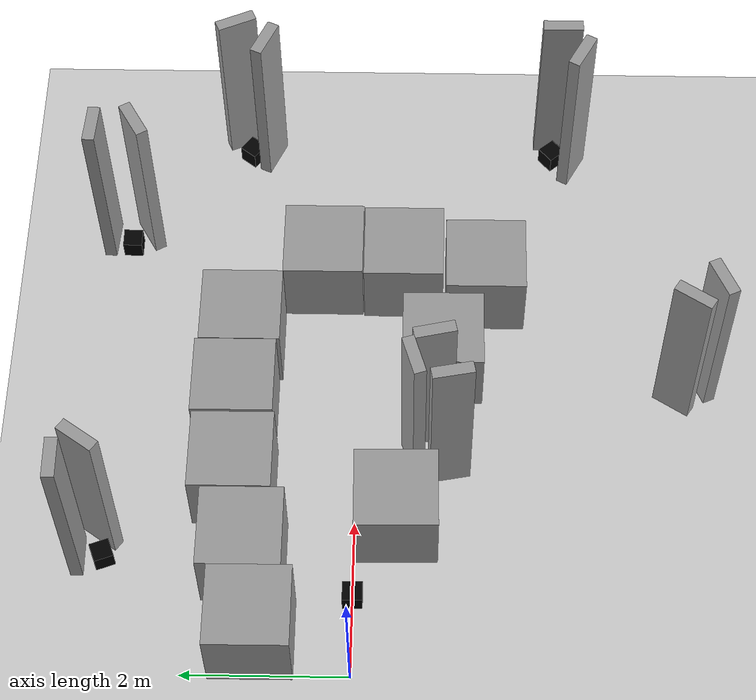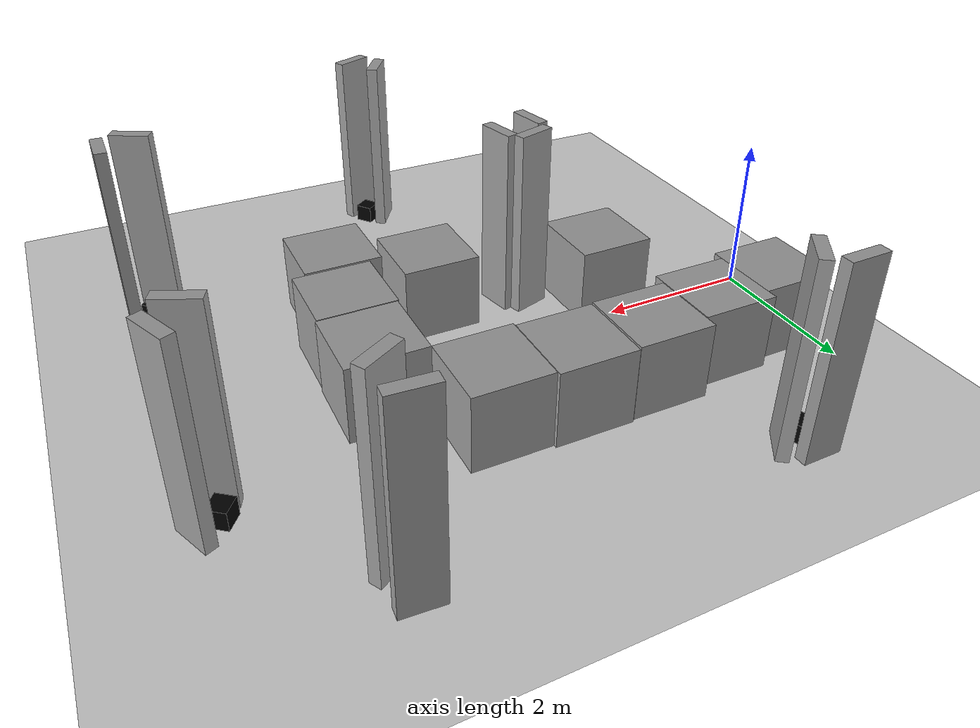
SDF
<sdf version="1.6">
 <world name="default">
  <light name="sun" type="directional">
   <pose>0 0 10 0 -0 0</pose>
   <diffuse>0.8 0.8 0.8 1</diffuse>
   <specular>0.2 0.2 0.2 1</specular>
   <attenuation>
    <range>1000</range>
    <constant>0.9</constant>
    <linear>0.01</linear>
    <quadratic>0.001</quadratic>
   </attenuation>
   <direction>-0.5 0.1 -0.9</direction>
  </light>
  <model name="ground_plane">
   <static>1</static>
   <link name="link">
    <collision name="collision">
     <geometry><plane><normal>0 0 1</normal><size>100 100</size></plane></geometry>
     <surface>
      <contact><collide_bitmask>65535</collide_bitmask></contact>
      <friction><ode><mu>100</mu><mu2>50</mu2></ode></friction>
     </surface>
    </collision>
    <visual name="visual">
     <cast_shadows>0</cast_shadows>
     <geometry><plane><normal>0 0 1</normal><size>100 100</size></plane></geometry>
     <material>
      <script><uri>file://media/materials/scripts/gazebo.material</uri><name>Gazebo/Grey</name></script>
     </material>
    </visual>
   </link>
  </model>
  <gravity>0 0 -9.8</gravity>
  <magnetic_field>6e-06 2.3e-05 -4.2e-05</magnetic_field>
  <atmosphere type="adiabatic"/>
  <physics name="default_physics" default="0" type="ode">
   <max_step_size>0.001</max_step_size>
   <real_time_factor>1</real_time_factor>
   <real_time_update_rate>1000</real_time_update_rate>
  </physics>
  <scene><ambient>0.4 0.4 0.4 1</ambient><background>0.7 0.7 0.7 1</background><shadows>1</shadows></scene>
  <audio><device>default</device></audio>
  <spherical_coordinates>
   <surface_model>EARTH_WGS84</surface_model>
   <latitude_deg>0</latitude_deg>
   <longitude_deg>0</longitude_deg>
   <elevation>0</elevation>
   <heading_deg>0</heading_deg>
  </spherical_coordinates>
  <model name="aruco_box_1">
   <link name="link_0">
    <inertial>
     <mass>1</mass>
     <inertia>
      <ixx>0.166667</ixx>
      <ixy>0</ixy>
      <ixz>0</ixz>
      <iyy>0.166667</iyy>
      <iyz>0</iyz>
      <izz>0.166667</izz>
     </inertia>
    </inertial>
    <visual name="visual">
     <geometry><box><size>0.24 0.24 0.24</size></box></geometry>
     <material>
      <lighting>1</lighting>
      <script>
       <uri>model://aruco_box_1/materials/scripts</uri>
       <uri>model://aruco_box_1/materials/textures</uri>
       <name>Aruco/Id1</name>
      </script>
      <shader type="vertex"><normal_map>__default__</normal_map></shader>
      <ambient>0 0 0 1</ambient>
      <diffuse>0 0 0 1</diffuse>
      <specular>0 0 0 0</specular>
      <emissive>1 1 1 1</emissive>
     </material>
    </visual>
    <collision name="collision">
     <geometry><box><size>0.24 0.24 0.24</size></box></geometry>
     <surface>
      <friction>
       <ode><mu>1</mu><mu2>1</mu2><fdir1>0 0 0</fdir1><slip1>0</slip1><slip2>0</slip2></ode>
       <torsional>
        <coefficient>1</coefficient>
        <patch_radius>0</patch_radius>
        <surface_radius>0</surface_radius>
        <use_patch_radius>1</use_patch_radius>
        <ode><slip>0</slip></ode>
       </torsional>
      </friction>
      <bounce><restitution_coefficient>0</restitution_coefficient><threshold>1e+06</threshold></bounce>
      <contact>
       <collide_without_contact>0</collide_without_contact>
       <collide_without_contact_bitmask>1</collide_without_contact_bitmask>
       <collide_bitmask>1</collide_bitmask>
       <ode>
        <soft_cfm>0</soft_cfm>
        <soft_erp>0.2</soft_erp>
        <kp>1e+13</kp>
        <kd>1</kd>
        <max_vel>0.01</max_vel>
        <min_depth>0</min_depth>
       </ode>
       <bullet>
        <split_impulse>1</split_impulse>
        <split_impulse_penetration_threshold>-0.01</split_impulse_penetration_threshold>
        <soft_cfm>0</soft_cfm>
        <soft_erp>0.2</soft_erp>
        <kp>1e+13</kp>
        <kd>1</kd>
       </bullet>
      </contact>
     </surface>
    </collision>
   </link>
   <static>0</static>
   <pose>1.48724 3.00832 0.12 0 0 -1.20521</pose>
  </model>
  <model name="aruco_box_2">
   <link name="link_0">
    <inertial>
     <mass>1</mass>
     <inertia>
      <ixx>0.166667</ixx>
      <ixy>0</ixy>
      <ixz>0</ixz>
      <iyy>0.166667</iyy>
      <iyz>0</iyz>
      <izz>0.166667</izz>
     </inertia>
    </inertial>
    <visual name="visual">
     <geometry><box><size>0.24 0.24 0.24</size></box></geometry>
     <material>
      <lighting>1</lighting>
      <script>
       <uri>model://aruco_box_2/materials/scripts</uri>
       <uri>model://aruco_box_2/materials/textures</uri>
       <name>Aruco/Id2</name>
      </script>
      <shader type="vertex"><normal_map>__default__</normal_map></shader>
      <ambient>0 0 0 1</ambient>
      <diffuse>0 0 0 1</diffuse>
      <specular>0 0 0 0</specular>
      <emissive>1 1 1 1</emissive>
     </material>
    </visual>
    <collision name="collision">
     <geometry><box><size>0.24 0.24 0.24</size></box></geometry>
     <surface>
      <friction>
       <ode><mu>1</mu><mu2>1</mu2><fdir1>0 0 0</fdir1><slip1>0</slip1><slip2>0</slip2></ode>
       <torsional>
        <coefficient>1</coefficient>
        <patch_radius>0</patch_radius>
        <surface_radius>0</surface_radius>
        <use_patch_radius>1</use_patch_radius>
        <ode><slip>0</slip></ode>
       </torsional>
      </friction>
      <bounce><restitution_coefficient>0</restitution_coefficient><threshold>1e+06</threshold></bounce>
      <contact>
       <collide_without_contact>0</collide_without_contact>
       <collide_without_contact_bitmask>1</collide_without_contact_bitmask>
       <collide_bitmask>1</collide_bitmask>
       <ode>
        <soft_cfm>0</soft_cfm>
        <soft_erp>0.2</soft_erp>
        <kp>1e+13</kp>
        <kd>1</kd>
        <max_vel>0.01</max_vel>
        <min_depth>0</min_depth>
       </ode>
       <bullet>
        <split_impulse>1</split_impulse>
        <split_impulse_penetration_threshold>-0.01</split_impulse_penetration_threshold>
        <soft_cfm>0</soft_cfm>
        <soft_erp>0.2</soft_erp>
        <kp>1e+13</kp>
        <kd>1</kd>
       </bullet>
      </contact>
     </surface>
    </collision>
   </link>
   <static>0</static>
   <pose>6 3 0.12 0 -0 0</pose>
  </model>
  <model name="aruco_box_3">
   <link name="link_0">
    <inertial>
     <mass>1</mass>
     <inertia>
      <ixx>0.166667</ixx>
      <ixy>0</ixy>
      <ixz>0</ixz>
      <iyy>0.166667</iyy>
      <iyz>0</iyz>
      <izz>0.166667</izz>
     </inertia>
    </inertial>
    <visual name="visual">
     <geometry><box><size>0.24 0.24 0.24</size></box></geometry>
     <material>
      <lighting>1</lighting>
      <script>
       <uri>model://aruco_box_3/materials/scripts</uri>
       <uri>model://aruco_box_3/materials/textures</uri>
       <name>Aruco/Id3</name>
      </script>
      <shader type="vertex"><normal_map>__default__</normal_map></shader>
      <ambient>0 0 0 1</ambient>
      <diffuse>0 0 0 1</diffuse>
      <specular>0 0 0 0</specular>
      <emissive>1 1 1 1</emissive>
     </material>
    </visual>
    <collision name="collision">
     <geometry><box><size>0.24 0.24 0.24</size></box></geometry>
     <surface>
      <friction>
       <ode><mu>1</mu><mu2>1</mu2><fdir1>0 0 0</fdir1><slip1>0</slip1><slip2>0</slip2></ode>
       <torsional>
        <coefficient>1</coefficient>
        <patch_radius>0</patch_radius>
        <surface_radius>0</surface_radius>
        <use_patch_radius>1</use_patch_radius>
        <ode><slip>0</slip></ode>
       </torsional>
      </friction>
      <bounce><restitution_coefficient>0</restitution_coefficient><threshold>1e+06</threshold></bounce>
      <contact>
       <collide_without_contact>0</collide_without_contact>
       <collide_without_contact_bitmask>1</collide_without_contact_bitmask>
       <collide_bitmask>1</collide_bitmask>
       <ode>
        <soft_cfm>0</soft_cfm>
        <soft_erp>0.2</soft_erp>
        <kp>1e+13</kp>
        <kd>1</kd>
        <max_vel>0.01</max_vel>
        <min_depth>0</min_depth>
       </ode>
       <bullet>
        <split_impulse>1</split_impulse>
        <split_impulse_penetration_threshold>-0.01</split_impulse_penetration_threshold>
        <soft_cfm>0</soft_cfm>
        <soft_erp>0.2</soft_erp>
        <kp>1e+13</kp>
        <kd>1</kd>
       </bullet>
      </contact>
     </surface>
    </collision>
   </link>
   <static>0</static>
   <pose>7.5 1.5 0.12 0 -0 0.916029</pose>
  </model>
  <model name="aruco_box_4">
   <link name="link_0">
    <inertial>
     <mass>1</mass>
     <inertia>
      <ixx>0.166667</ixx>
      <ixy>0</ixy>
      <ixz>0</ixz>
      <iyy>0.166667</iyy>
      <iyz>0</iyz>
      <izz>0.166667</izz>
     </inertia>
    </inertial>
    <visual name="visual">
     <geometry><box><size>0.24 0.24 0.24</size></box></geometry>
     <material>
      <lighting>1</lighting>
      <script>
       <uri>model://aruco_box_4/materials/scripts</uri>
       <uri>model://aruco_box_4/materials/textures</uri>
       <name>Aruco/Id4</name>
      </script>
      <shader type="vertex"><normal_map>__default__</normal_map></shader>
      <ambient>0 0 0 1</ambient>
      <diffuse>0 0 0 1</diffuse>
      <specular>0 0 0 0</specular>
      <emissive>1 1 1 1</emissive>
     </material>
    </visual>
    <collision name="collision">
     <geometry><box><size>0.24 0.24 0.24</size></box></geometry>
     <surface>
      <friction>
       <ode><mu>1</mu><mu2>1</mu2><fdir1>0 0 0</fdir1><slip1>0</slip1><slip2>0</slip2></ode>
       <torsional>
        <coefficient>1</coefficient>
        <patch_radius>0</patch_radius>
        <surface_radius>0</surface_radius>
        <use_patch_radius>1</use_patch_radius>
        <ode><slip>0</slip></ode>
       </torsional>
      </friction>
      <bounce><restitution_coefficient>0</restitution_coefficient><threshold>1e+06</threshold></bounce>
      <contact>
       <collide_without_contact>0</collide_without_contact>
       <collide_without_contact_bitmask>1</collide_without_contact_bitmask>
       <collide_bitmask>1</collide_bitmask>
       <ode>
        <soft_cfm>0</soft_cfm>
        <soft_erp>0.2</soft_erp>
        <kp>1e+13</kp>
        <kd>1</kd>
        <max_vel>0.01</max_vel>
        <min_depth>0</min_depth>
       </ode>
       <bullet>
        <split_impulse>1</split_impulse>
        <split_impulse_penetration_threshold>-0.01</split_impulse_penetration_threshold>
        <soft_cfm>0</soft_cfm>
        <soft_erp>0.2</soft_erp>
        <kp>1e+13</kp>
        <kd>1</kd>
       </bullet>
      </contact>
     </surface>
    </collision>
   </link>
   <static>0</static>
   <pose>7.5 -2.5 0.12 0 -0 -0.862175</pose>
  </model>
  <model name="aruco_box_5">
   <link name="link_0">
    <inertial>
     <mass>1</mass>
     <inertia>
      <ixx>0.166667</ixx>
      <ixy>0</ixy>
      <ixz>0</ixz>
      <iyy>0.166667</iyy>
      <iyz>0</iyz>
      <izz>0.166667</izz>
     </inertia>
    </inertial>
    <visual name="visual">
     <geometry><box><size>0.24 0.24 0.24</size></box></geometry>
     <material>
      <lighting>1</lighting>
      <script>
       <uri>model://aruco_box_5/materials/scripts</uri>
       <uri>model://aruco_box_5/materials/textures</uri>
       <name>Aruco/Id5</name>
      </script>
      <shader type="vertex"><normal_map>__default__</normal_map></shader>
      <ambient>0 0 0 1</ambient>
      <diffuse>0 0 0 1</diffuse>
      <specular>0 0 0 0</specular>
      <emissive>1 1 1 1</emissive>
     </material>
    </visual>
    <collision name="collision">
     <geometry><box><size>0.24 0.24 0.24</size></box></geometry>
     <surface>
      <friction>
       <ode><mu>1</mu><mu2>1</mu2><fdir1>0 0 0</fdir1><slip1>0</slip1><slip2>0</slip2></ode>
       <torsional>
        <coefficient>1</coefficient>
        <patch_radius>0</patch_radius>
        <surface_radius>0</surface_radius>
        <use_patch_radius>1</use_patch_radius>
        <ode><slip>0</slip></ode>
       </torsional>
      </friction>
      <bounce><restitution_coefficient>0</restitution_coefficient><threshold>1e+06</threshold></bounce>
      <contact>
       <collide_without_contact>0</collide_without_contact>
       <collide_without_contact_bitmask>1</collide_without_contact_bitmask>
       <collide_bitmask>1</collide_bitmask>
       <ode>
        <soft_cfm>0</soft_cfm>
        <soft_erp>0.2</soft_erp>
        <kp>1e+13</kp>
        <kd>1</kd>
        <max_vel>0.01</max_vel>
        <min_depth>0</min_depth>
       </ode>
       <bullet>
        <split_impulse>1</split_impulse>
        <split_impulse_penetration_threshold>-0.01</split_impulse_penetration_threshold>
        <soft_cfm>0</soft_cfm>
        <soft_erp>0.2</soft_erp>
        <kp>1e+13</kp>
        <kd>1</kd>
       </bullet>
      </contact>
     </surface>
    </collision>
   </link>
   <static>0</static>
   <pose>4 -4 0.12 0 -0 -0.915576</pose>
  </model>
  <model name="aruco_box_0">
   <link name="link_0">
    <inertial>
     <mass>1</mass>
     <inertia>
      <ixx>0.166667</ixx>
      <ixy>0</ixy>
      <ixz>0</ixz>
      <iyy>0.166667</iyy>
      <iyz>0</iyz>
      <izz>0.166667</izz>
     </inertia>
    </inertial>
    <visual name="visual">
     <geometry><box><size>0.24 0.24 0.24</size></box></geometry>
     <material>
      <lighting>1</lighting>
      <script>
       <uri>model://aruco_box_0/materials/scripts</uri>
       <uri>model://aruco_box_0/materials/textures</uri>
       <name>Aruco/Id0</name>
      </script>
      <shader type="vertex"><normal_map>__default__</normal_map></shader>
      <ambient>0 0 0 1</ambient>
      <diffuse>0 0 0 1</diffuse>
      <specular>0 0 0 0</specular>
      <emissive>1 1 1 1</emissive>
     </material>
    </visual>
    <collision name="collision">
     <geometry><box><size>0.24 0.24 0.24</size></box></geometry>
     <surface>
      <friction>
       <ode><mu>1</mu><mu2>1</mu2><fdir1>0 0 0</fdir1><slip1>0</slip1><slip2>0</slip2></ode>
       <torsional>
        <coefficient>1</coefficient>
        <patch_radius>0</patch_radius>
        <surface_radius>0</surface_radius>
        <use_patch_radius>1</use_patch_radius>
        <ode><slip>0</slip></ode>
       </torsional>
      </friction>
      <bounce><restitution_coefficient>0</restitution_coefficient><threshold>1e+06</threshold></bounce>
      <contact>
       <collide_without_contact>0</collide_without_contact>
       <collide_without_contact_bitmask>1</collide_without_contact_bitmask>
       <collide_bitmask>1</collide_bitmask>
       <ode>
        <soft_cfm>0</soft_cfm>
        <soft_erp>0.2</soft_erp>
        <kp>1e+13</kp>
        <kd>1</kd>
        <max_vel>0.01</max_vel>
        <min_depth>0</min_depth>
       </ode>
       <bullet>
        <split_impulse>1</split_impulse>
        <split_impulse_penetration_threshold>-0.01</split_impulse_penetration_threshold>
        <soft_cfm>0</soft_cfm>
        <soft_erp>0.2</soft_erp>
        <kp>1e+13</kp>
        <kd>1</kd>
       </bullet>
      </contact>
     </surface>
    </collision>
   </link>
   <static>0</static>
   <pose>1 0 0.12 0 -0 0</pose>
  </model>
  <model name="wall">
   <pose>2.89744 -0.695715 0 0 -0 1.87264</pose>
   <link name="Wall_0">
    <collision name="Wall_0_Collision">
     <geometry><box><size>0.5 0.15 2.5</size></box></geometry>
     <pose>0 0 1.25 0 -0 0</pose>
    </collision>
    <visual name="Wall_0_Visual">
     <pose>0 0 1.25 0 -0 0</pose>
     <geometry><box><size>0.5 0.15 2.5</size></box></geometry>
     <material>
      <script><uri>file://media/materials/scripts/gazebo.material</uri><name>Gazebo/Grey</name></script>
      <ambient>1 1 1 1</ambient>
     </material>
     <meta><layer>0</layer></meta>
    </visual>
    <pose>0 -0 0 0 -0 1.5708</pose>
   </link>
   <static>1</static>
  </model>
  <model name="wall_0">
   <pose>1.5118 3.30791 0 0 0 -1.55606</pose>
   <link name="Wall_0">
    <collision name="Wall_0_Collision">
     <geometry><box><size>0.5 0.15 2.5</size></box></geometry>
     <pose>0 0 1.25 0 -0 0</pose>
    </collision>
    <visual name="Wall_0_Visual">
     <pose>0 0 1.25 0 -0 0</pose>
     <geometry><box><size>0.5 0.15 2.5</size></box></geometry>
     <material>
      <script><uri>file://media/materials/scripts/gazebo.material</uri><name>Gazebo/Grey</name></script>
      <ambient>1 1 1 1</ambient>
     </material>
     <meta><layer>0</layer></meta>
    </visual>
    <pose>0 -0 0 0 -0 1.5708</pose>
   </link>
   <static>1</static>
  </model>
  <model name="wall_1">
   <pose>1.79907 3.03325 0 0 0 -0.60799</pose>
   <link name="Wall_0">
    <collision name="Wall_0_Collision">
     <geometry><box><size>0.5 0.15 2.5</size></box></geometry>
     <pose>0 0 1.25 0 -0 0</pose>
    </collision>
    <visual name="Wall_0_Visual">
     <pose>0 0 1.25 0 -0 0</pose>
     <geometry><box><size>0.5 0.15 2.5</size></box></geometry>
     <material>
      <script><uri>file://media/materials/scripts/gazebo.material</uri><name>Gazebo/Grey</name></script>
      <ambient>1 1 1 1</ambient>
     </material>
     <meta><layer>0</layer></meta>
    </visual>
    <pose>0 -0 0 0 -0 1.5708</pose>
   </link>
   <static>1</static>
  </model>
  <model name="unit_box">
   <pose>3.50217 1.49986 0.499995 0 1e-05 5e-06</pose>
   <link name="link">
    <inertial>
     <mass>1</mass>
     <inertia>
      <ixx>0.166667</ixx>
      <ixy>0</ixy>
      <ixz>0</ixz>
      <iyy>0.166667</iyy>
      <iyz>0</iyz>
      <izz>0.166667</izz>
     </inertia>
    </inertial>
    <collision name="collision"><geometry><box><size>1 1 1</size></box></geometry></collision>
    <visual name="visual">
     <geometry><box><size>1 1 1</size></box></geometry>
     <material>
      <script><name>Gazebo/Grey</name><uri>file://media/materials/scripts/gazebo.material</uri></script>
     </material>
    </visual>
   </link>
  </model>
  <model name="wall_2">
   <pose>2.69992 -1.14021 0 0 -0 0.18936</pose>
   <link name="Wall_0">
    <collision name="Wall_0_Collision">
     <geometry><box><size>0.5 0.15 2.5</size></box></geometry>
     <pose>0 0 1.25 0 -0 0</pose>
    </collision>
    <visual name="Wall_0_Visual">
     <pose>0 0 1.25 0 -0 0</pose>
     <geometry><box><size>0.5 0.15 2.5</size></box></geometry>
     <material>
      <script><uri>file://media/materials/scripts/gazebo.material</uri><name>Gazebo/Grey</name></script>
      <ambient>1 1 1 1</ambient>
     </material>
     <meta><layer>0</layer></meta>
    </visual>
    <pose>0 -0 0 0 -0 1.5708</pose>
   </link>
   <static>1</static>
  </model>
  <model name="wall_3">
   <pose>7.76331 -2.5207 0 0 -0 0</pose>
   <link name="Wall_0">
    <collision name="Wall_0_Collision">
     <geometry><box><size>0.5 0.15 2.5</size></box></geometry>
     <pose>0 0 1.25 0 -0 0</pose>
    </collision>
    <visual name="Wall_0_Visual">
     <pose>0 0 1.25 0 -0 0</pose>
     <geometry><box><size>0.5 0.15 2.5</size></box></geometry>
     <material>
      <script><uri>file://media/materials/scripts/gazebo.material</uri><name>Gazebo/Grey</name></script>
      <ambient>1 1 1 1</ambient>
     </material>
     <meta><layer>0</layer></meta>
    </visual>
    <pose>0 -0 0 0 -0 1.5708</pose>
   </link>
   <static>1</static>
  </model>
  <model name="wall_4">
   <pose>7.36531 -2.75436 0 0 -0 1.07517</pose>
   <link name="Wall_0">
    <collision name="Wall_0_Collision">
     <geometry><box><size>0.5 0.15 2.5</size></box></geometry>
     <pose>0 0 1.25 0 -0 0</pose>
    </collision>
    <visual name="Wall_0_Visual">
     <pose>0 0 1.25 0 -0 0</pose>
     <geometry><box><size>0.5 0.15 2.5</size></box></geometry>
     <material>
      <script><uri>file://media/materials/scripts/gazebo.material</uri><name>Gazebo/Grey</name></script>
      <ambient>1 1 1 1</ambient>
     </material>
     <meta><layer>0</layer></meta>
    </visual>
    <pose>0 -0 0 0 -0 1.5708</pose>
   </link>
   <static>1</static>
  </model>
  <model name="wall_5">
   <pose>6.20914 2.77685 0 0 0 -1.04463</pose>
   <link name="Wall_0">
    <collision name="Wall_0_Collision">
     <geometry><box><size>0.5 0.15 2.5</size></box></geometry>
     <pose>0 0 1.25 0 -0 0</pose>
    </collision>
    <visual name="Wall_0_Visual">
     <pose>0 0 1.25 0 -0 0</pose>
     <geometry><box><size>0.5 0.15 2.5</size></box></geometry>
     <material>
      <script><uri>file://media/materials/scripts/gazebo.material</uri><name>Gazebo/Grey</name></script>
      <ambient>1 1 1 1</ambient>
     </material>
     <meta><layer>0</layer></meta>
    </visual>
    <pose>0 -0 0 0 -0 1.5708</pose>
   </link>
   <static>1</static>
  </model>
  <model name="wall_6">
   <pose>6.12716 3.28216 0 0 0 -1.63722</pose>
   <link name="Wall_0">
    <collision name="Wall_0_Collision">
     <geometry><box><size>0.5 0.15 2.5</size></box></geometry>
     <pose>0 0 1.25 0 -0 0</pose>
    </collision>
    <visual name="Wall_0_Visual">
     <pose>0 0 1.25 0 -0 0</pose>
     <geometry><box><size>0.5 0.15 2.5</size></box></geometry>
     <material>
      <script><uri>file://media/materials/scripts/gazebo.material</uri><name>Gazebo/Grey</name></script>
      <ambient>1 1 1 1</ambient>
     </material>
     <meta><layer>0</layer></meta>
    </visual>
    <pose>0 -0 0 0 -0 1.5708</pose>
   </link>
   <static>1</static>
  </model>
  <model name="unit_box_0">
   <pose>2.47703 1.47245 0.499995 -0 1e-05 0.000135</pose>
   <link name="link">
    <inertial>
     <mass>1</mass>
     <inertia>
      <ixx>0.166667</ixx>
      <ixy>0</ixy>
      <ixz>0</ixz>
      <iyy>0.166667</iyy>
      <iyz>0</iyz>
      <izz>0.166667</izz>
     </inertia>
    </inertial>
    <collision name="collision"><geometry><box><size>1 1 1</size></box></geometry></collision>
    <visual name="visual">
     <geometry><box><size>1 1 1</size></box></geometry>
     <material>
      <script><name>Gazebo/Grey</name><uri>file://media/materials/scripts/gazebo.material</uri></script>
     </material>
    </visual>
   </link>
  </model>
  <model name="unit_box_1">
   <pose>1.46614 1.3067 0.499995 -0 -1e-05 0.002842</pose>
   <link name="link">
    <inertial>
     <mass>1</mass>
     <inertia>
      <ixx>0.166667</ixx>
      <ixy>0</ixy>
      <ixz>0</ixz>
      <iyy>0.166667</iyy>
      <iyz>0</iyz>
      <izz>0.166667</izz>
     </inertia>
    </inertial>
    <collision name="collision"><geometry><box><size>1 1 1</size></box></geometry></collision>
    <visual name="visual">
     <geometry><box><size>1 1 1</size></box></geometry>
     <material>
      <script><name>Gazebo/Grey</name><uri>file://media/materials/scripts/gazebo.material</uri></script>
     </material>
    </visual>
   </link>
  </model>
  <model name="unit_box_2">
   <pose>5.48786 -0.547458 0.499995 1e-05 -0 5e-06</pose>
   <link name="link">
    <inertial>
     <mass>1</mass>
     <inertia>
      <ixx>0.166667</ixx>
      <ixy>0</ixy>
      <ixz>0</ixz>
      <iyy>0.166667</iyy>
      <iyz>0</iyz>
      <izz>0.166667</izz>
     </inertia>
    </inertial>
    <collision name="collision"><geometry><box><size>1 1 1</size></box></geometry></collision>
    <visual name="visual">
     <geometry><box><size>1 1 1</size></box></geometry>
     <material>
      <script><name>Gazebo/Grey</name><uri>file://media/materials/scripts/gazebo.material</uri></script>
     </material>
    </visual>
   </link>
  </model>
  <model name="wall_7">
   <pose>7.50744 1.23442 0 0 -0 1.14984</pose>
   <link name="Wall_0">
    <collision name="Wall_0_Collision">
     <geometry><box><size>0.5 0.15 2.5</size></box></geometry>
     <pose>0 0 1.25 0 -0 0</pose>
    </collision>
    <visual name="Wall_0_Visual">
     <pose>0 0 1.25 0 -0 0</pose>
     <geometry><box><size>0.5 0.15 2.5</size></box></geometry>
     <material>
      <script><uri>file://media/materials/scripts/gazebo.material</uri><name>Gazebo/Grey</name></script>
      <ambient>1 1 1 1</ambient>
     </material>
     <meta><layer>0</layer></meta>
    </visual>
    <pose>0 -0 0 0 -0 1.5708</pose>
   </link>
   <static>1</static>
  </model>
  <model name="wall_8">
   <pose>7.78204 1.61259 0 0 -0 0.41578</pose>
   <link name="Wall_0">
    <collision name="Wall_0_Collision">
     <geometry><box><size>0.5 0.15 2.5</size></box></geometry>
     <pose>0 0 1.25 0 -0 0</pose>
    </collision>
    <visual name="Wall_0_Visual">
     <pose>0 0 1.25 0 -0 0</pose>
     <geometry><box><size>0.5 0.15 2.5</size></box></geometry>
     <material>
      <script><uri>file://media/materials/scripts/gazebo.material</uri><name>Gazebo/Grey</name></script>
      <ambient>1 1 1 1</ambient>
     </material>
     <meta><layer>0</layer></meta>
    </visual>
    <pose>0 -0 0 0 -0 1.5708</pose>
   </link>
   <static>1</static>
  </model>
  <model name="wall_9">
   <pose>3.23905 -0.931049 0 0 -0 0.21907</pose>
   <link name="Wall_0">
    <collision name="Wall_0_Collision">
     <geometry><box><size>0.5 0.15 2.5</size></box></geometry>
     <pose>0 0 1.25 0 -0 0</pose>
    </collision>
    <visual name="Wall_0_Visual">
     <pose>0 0 1.25 0 -0 0</pose>
     <geometry><box><size>0.5 0.15 2.5</size></box></geometry>
     <material>
      <script><uri>file://media/materials/scripts/gazebo.material</uri><name>Gazebo/Grey</name></script>
      <ambient>1 1 1 1</ambient>
     </material>
     <meta><layer>0</layer></meta>
    </visual>
    <pose>0 -0 0 0 -0 1.5708</pose>
   </link>
   <static>1</static>
  </model>
  <model name="wall_10">
   <pose>3.75946 -3.94601 0 0 0 -0.571987</pose>
   <link name="Wall_0">
    <collision name="Wall_0_Collision">
     <geometry><box><size>0.5 0.15 2.5</size></box></geometry>
     <pose>0 0 1.25 0 -0 0</pose>
    </collision>
    <visual name="Wall_0_Visual">
     <pose>0 0 1.25 0 -0 0</pose>
     <geometry><box><size>0.5 0.15 2.5</size></box></geometry>
     <material>
      <script><uri>file://media/materials/scripts/gazebo.material</uri><name>Gazebo/Grey</name></script>
      <ambient>1 1 1 1</ambient>
     </material>
     <meta><layer>0</layer></meta>
    </visual>
    <pose>0 -0 0 0 -0 1.5708</pose>
   </link>
   <static>1</static>
  </model>
  <model name="wall_11">
   <pose>4.01227 -4.29569 0 0 0 -1.14594</pose>
   <link name="Wall_0">
    <collision name="Wall_0_Collision">
     <geometry><box><size>0.5 0.15 2.5</size></box></geometry>
     <pose>0 0 1.25 0 -0 0</pose>
    </collision>
    <visual name="Wall_0_Visual">
     <pose>0 0 1.25 0 -0 0</pose>
     <geometry><box><size>0.5 0.15 2.5</size></box></geometry>
     <material>
      <script><uri>file://media/materials/scripts/gazebo.material</uri><name>Gazebo/Grey</name></script>
      <ambient>1 1 1 1</ambient>
     </material>
     <meta><layer>0</layer></meta>
    </visual>
    <pose>0 -0 0 0 -0 1.5708</pose>
   </link>
   <static>1</static>
  </model>
  <model name="unit_box_3">
   <pose>1.99085 -0.502419 0.499995 0 1e-05 0.012213</pose>
   <link name="link">
    <inertial>
     <mass>1</mass>
     <inertia>
      <ixx>0.166667</ixx>
      <ixy>0</ixy>
      <ixz>0</ixz>
      <iyy>0.166667</iyy>
      <iyz>0</iyz>
      <izz>0.166667</izz>
     </inertia>
    </inertial>
    <collision name="collision"><geometry><box><size>1 1 1</size></box></geometry></collision>
    <visual name="visual">
     <geometry><box><size>1 1 1</size></box></geometry>
     <material>
      <script><name>Gazebo/Grey</name><uri>file://media/materials/scripts/gazebo.material</uri></script>
     </material>
    </visual>
   </link>
  </model>
  <model name="unit_box_4">
   <pose>5.5074 0.466388 0.499995 1e-05 0 -0.000525</pose>
   <link name="link">
    <inertial>
     <mass>1</mass>
     <inertia>
      <ixx>0.166667</ixx>
      <ixy>0</ixy>
      <ixz>0</ixz>
      <iyy>0.166667</iyy>
      <iyz>0</iyz>
      <izz>0.166667</izz>
     </inertia>
    </inertial>
    <collision name="collision"><geometry><box><size>1 1 1</size></box></geometry></collision>
    <visual name="visual">
     <geometry><box><size>1 1 1</size></box></geometry>
     <material>
      <script><name>Gazebo/Grey</name><uri>file://media/materials/scripts/gazebo.material</uri></script>
     </material>
    </visual>
   </link>
  </model>
  <model name="unit_box_5">
   <pose>5.31637 -1.58394 0.499995 -1e-05 -0 5e-06</pose>
   <link name="link">
    <inertial>
     <mass>1</mass>
     <inertia>
      <ixx>0.166667</ixx>
      <ixy>0</ixy>
      <ixz>0</ixz>
      <iyy>0.166667</iyy>
      <iyz>0</iyz>
      <izz>0.166667</izz>
     </inertia>
    </inertial>
    <collision name="collision"><geometry><box><size>1 1 1</size></box></geometry></collision>
    <visual name="visual">
     <geometry><box><size>1 1 1</size></box></geometry>
     <material>
      <script><name>Gazebo/Grey</name><uri>file://media/materials/scripts/gazebo.material</uri></script>
     </material>
    </visual>
   </link>
  </model>
  <model name="unit_box_6">
   <pose>4.50794 1.45983 0.499995 1e-05 0 -0.00059</pose>
   <link name="link">
    <inertial>
     <mass>1</mass>
     <inertia>
      <ixx>0.166667</ixx>
      <ixy>0</ixy>
      <ixz>0</ixz>
      <iyy>0.166667</iyy>
      <iyz>0</iyz>
      <izz>0.166667</izz>
     </inertia>
    </inertial>
    <collision name="collision"><geometry><box><size>1 1 1</size></box></geometry></collision>
    <visual name="visual">
     <geometry><box><size>1 1 1</size></box></geometry>
     <material>
      <script><name>Gazebo/Grey</name><uri>file://media/materials/scripts/gazebo.material</uri></script>
     </material>
    </visual>
   </link>
  </model>
  <model name="unit_box_7">
   <pose>0.466535 1.16785 0.499995 0 1e-05 0.002844</pose>
   <link name="link">
    <inertial>
     <mass>1</mass>
     <inertia>
      <ixx>0.166667</ixx>
      <ixy>0</ixy>
      <ixz>0</ixz>
      <iyy>0.166667</iyy>
      <iyz>0</iyz>
      <izz>0.166667</izz>
     </inertia>
    </inertial>
    <collision name="collision"><geometry><box><size>1 1 1</size></box></geometry></collision>
    <visual name="visual">
     <geometry><box><size>1 1 1</size></box></geometry>
     <material>
      <script><name>Gazebo/Grey</name><uri>file://media/materials/scripts/gazebo.material</uri></script>
     </material>
    </visual>
   </link>
  </model>
  <model name="unit_box_8">
   <pose>4.20671 -1.05009 0.499995 0 1e-05 0</pose>
   <link name="link">
    <inertial>
     <mass>1</mass>
     <inertia>
      <ixx>0.166667</ixx>
      <ixy>0</ixy>
      <ixz>0</ixz>
      <iyy>0.166667</iyy>
      <iyz>0</iyz>
      <izz>0.166667</izz>
     </inertia>
    </inertial>
    <collision name="collision"><geometry><box><size>1 1 1</size></box></geometry></collision>
    <visual name="visual">
     <geometry><box><size>1 1 1</size></box></geometry>
     <material>
      <script><name>Gazebo/Grey</name><uri>file://media/materials/scripts/gazebo.material</uri></script>
     </material>
    </visual>
   </link>
  </model>
 </world>
</sdf>
